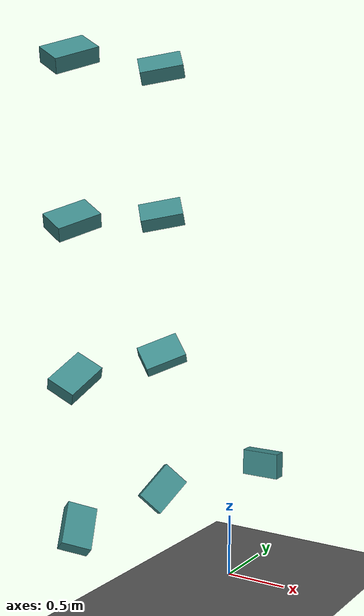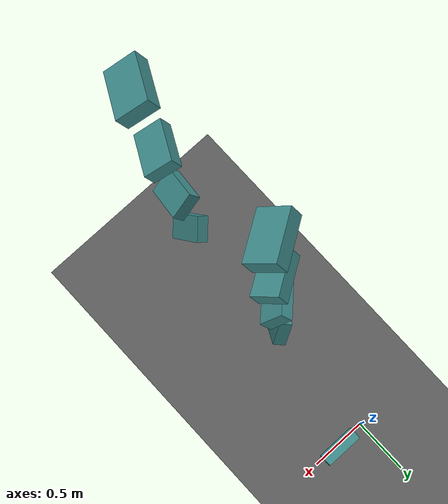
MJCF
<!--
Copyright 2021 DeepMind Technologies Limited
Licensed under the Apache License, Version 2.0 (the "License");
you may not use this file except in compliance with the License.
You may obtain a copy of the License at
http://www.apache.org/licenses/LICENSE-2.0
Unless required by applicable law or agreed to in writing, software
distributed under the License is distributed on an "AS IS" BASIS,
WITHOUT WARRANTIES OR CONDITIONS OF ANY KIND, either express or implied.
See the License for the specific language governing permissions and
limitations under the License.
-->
<mujoco model="Humanoid and 100 objects">

  <option timestep="0.005"/>

  <default>
    <geom solimp=".9 .9 .01"/>
    <default class="object3">
      <geom type="box" material="object3" size="0.15 0.1 0.05"/>
    </default>
  </default>

  <asset>
    <texture type="skybox" builtin="gradient" width="512" height="512" rgb1=".4 .6 .8" rgb2="0 0 0"/>
    <texture name="texgeom" type="cube" builtin="flat" mark="cross" width="128" height="128"
             rgb1="0.6 0.6 0.6" rgb2="0.6 0.6 0.6" markrgb="1 1 1"/>
    <texture name="texplane" type="2d" builtin="checker" rgb1=".4 .4 .4" rgb2=".6 .6 .6"
             width="512" height="512"/>
    <material name='MatPlane' reflectance='0.3' texture="texplane" texrepeat="1 1" texuniform="true"
              rgba=".7 .7 .7 1"/>
    <material name='object1' texture="texgeom" texuniform="true" rgba=".4 .9 .6 1" />
    <material name='object2' texture="texgeom" texuniform="true" rgba=".4 .6 .9 1" />
    <material name='object3' texture="texgeom" texuniform="true" rgba=".4 .9 .9 1" />
    <material name='object4' texture="texgeom" texuniform="true" rgba=".8 .6 .8 1" />
    <material name='object5' texture="texgeom" texuniform="true" rgba=".9 .1 .1 1" />
  </asset>

  <visual>
    <quality shadowsize="4096" offsamples="8"/>
    <map znear="0.1" force="0.05"/>
  </visual>

  <statistic extent="4"/>

  <worldbody>
    <light directional="true" diffuse=".8 .8 .8" pos="0 0 10" dir="0 0 -10"/>
    <geom name="floor" type="plane" size="3 3 .5" material="MatPlane"/>

    <body pos="0 -2 1" quat="0 -0.816497 0.408248 0.408248">
      <freejoint/>
      <geom class="object3"/>
    </body>
    <body pos="0 -2 2" quat="0 -0.666667 0.666667 0.333333">
      <freejoint/>
      <geom class="object3"/>
    </body>
    <body pos="0 -2 3" quat="0 -0.534522 0.801784 0.267261">
      <freejoint/>
      <geom class="object3"/>
    </body>
    <body pos="0 -2 4" quat="0 -0.534522 0.801784 0.267261">
      <freejoint/>
      <geom class="object3"/>
    </body>

    <body pos="0 -1 1" quat="0 -0.57735 0.57735 0.57735">
      <freejoint/>
      <geom class="object3"/>
    </body>
    <body pos="0 -1 2" quat="0 -0.408248 0.816497 0.408248">
      <freejoint/>
      <geom class="object3"/>
    </body>
    <body pos="0 -1 3" quat="0 -0.301511 0.904534 0.301511">
      <freejoint/>
      <geom class="object3"/>
    </body>
    <body pos="0 -1 4" quat="0 -0.301511 0.904534 0.301511">
      <freejoint/>
      <geom class="object3"/>
    </body>

    <body pos="0.3 0 1" quat="0 0 0.707107 0.707107">
      <freejoint/>
      <geom class="object3"/>
    </body>

  </worldbody>
</mujoco>
